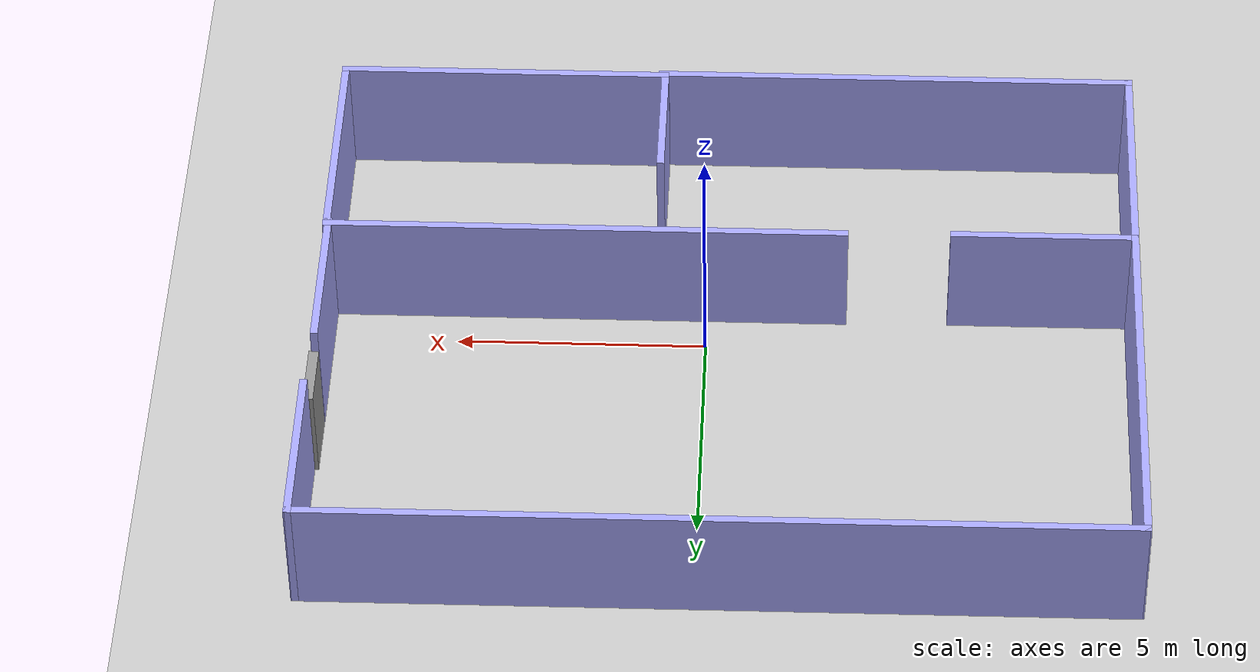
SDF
<sdf version="1.6">
 <world name="default">
  <light name="sun" type="directional">
   <pose>0 0 10 0 -0 0</pose>
   <diffuse>0.8 0.8 0.8 1</diffuse>
   <specular>0.2 0.2 0.2 1</specular>
   <attenuation>
    <range>1000</range>
    <constant>0.9</constant>
    <linear>0.01</linear>
    <quadratic>0.001</quadratic>
   </attenuation>
   <direction>-0.5 0.1 -0.9</direction>
  </light>
  <model name="ground_plane">
   <static>1</static>
   <link name="link">
    <collision name="collision">
     <geometry><plane><normal>0 0 1</normal><size>100 100</size></plane></geometry>
     <surface>
      <contact><collide_bitmask>65535</collide_bitmask></contact>
      <friction><ode><mu>100</mu><mu2>50</mu2></ode></friction>
     </surface>
    </collision>
    <visual name="visual">
     <cast_shadows>0</cast_shadows>
     <geometry><plane><normal>0 0 1</normal><size>100 100</size></plane></geometry>
     <material>
      <script><uri>file://media/materials/scripts/gazebo.material</uri><name>Gazebo/Grey</name></script>
     </material>
    </visual>
   </link>
  </model>
  <gravity>0 0 -9.8</gravity>
  <magnetic_field>6e-06 2.3e-05 -4.2e-05</magnetic_field>
  <atmosphere type="adiabatic"/>
  <physics name="default_physics" default="0" type="ode">
   <max_step_size>0.001</max_step_size>
   <real_time_factor>1</real_time_factor>
   <real_time_update_rate>1000</real_time_update_rate>
  </physics>
  <scene><ambient>0.4 0.4 0.4 1</ambient><background>0.7 0.7 0.7 1</background><shadows>1</shadows></scene>
  <spherical_coordinates>
   <surface_model>EARTH_WGS84</surface_model>
   <latitude_deg>0</latitude_deg>
   <longitude_deg>0</longitude_deg>
   <elevation>0</elevation>
   <heading_deg>0</heading_deg>
  </spherical_coordinates>
  <model name="house">
   <pose>-0.44422 0.78227 0 0 -0 0</pose>
   <link name="Door_3">
    <collision name="Door_3_Collision">
     <geometry><box><size>1.30997 0.2 2</size></box></geometry>
     <pose>0 0 1 0 -0 0</pose>
    </collision>
    <visual name="Door_3_Visual">
     <pose>0 0 1 0 -0 0</pose>
     <geometry><box><size>1.30997 0.2 2</size></box></geometry>
     <material>
      <script><uri>file://media/materials/scripts/gazebo.material</uri><name>Gazebo/Grey</name></script>
     </material>
    </visual>
    <pose>8.0389 2.18562 0 0 -0 1.56918</pose>
   </link>
   <link name="Wall_0">
    <collision name="Wall_0_Collision">
     <geometry><box><size>8 0.15 2.5</size></box></geometry>
     <pose>0 0 1.25 0 -0 0</pose>
    </collision>
    <visual name="Wall_0_Visual">
     <pose>0 0 1.25 0 -0 0</pose>
     <geometry><box><size>8 0.15 2.5</size></box></geometry>
     <material>
      <script><uri>file://media/materials/scripts/gazebo.material</uri><name>Gazebo/Grey</name></script>
      <ambient>0.666667 0.666667 1 1</ambient>
     </material>
     <meta><layer>0</layer></meta>
    </visual>
    <pose>-8.09112 2.29597 0 0 0 -1.5708</pose>
   </link>
   <link name="Wall_10">
    <collision name="Wall_10_Collision">
     <geometry><box><size>4.75 0.15 2.5</size></box></geometry>
     <pose>0 0 1.25 0 -0 0</pose>
    </collision>
    <visual name="Wall_10_Visual">
     <pose>0 0 1.25 0 -0 0</pose>
     <geometry><box><size>4.75 0.15 2.5</size></box></geometry>
     <material>
      <script><uri>file://media/materials/scripts/gazebo.material</uri><name>Gazebo/Grey</name></script>
      <ambient>0.666667 0.666667 1 1</ambient>
     </material>
     <meta><layer>0</layer></meta>
    </visual>
    <pose>8.04306 -3.88895 0 0 0 -1.57074</pose>
   </link>
   <link name="Wall_11">
    <collision name="Wall_11_Collision">
     <geometry><box><size>6.75 0.15 2.5</size></box></geometry>
     <pose>0 0 1.25 0 -0 0</pose>
    </collision>
    <visual name="Wall_11_Visual">
     <pose>0 0 1.25 0 -0 0</pose>
     <geometry><box><size>6.75 0.15 2.5</size></box></geometry>
     <material>
      <script><uri>file://media/materials/scripts/gazebo.material</uri><name>Gazebo/Grey</name></script>
      <ambient>0.666667 0.666667 1 1</ambient>
     </material>
     <meta><layer>0</layer></meta>
    </visual>
    <pose>4.7432 -6.18871 0 0 -0 3.14159</pose>
   </link>
   <link name="Wall_12">
    <collision name="Wall_12_Collision">
     <geometry><box><size>2.75 0.15 2.5</size></box></geometry>
     <pose>0 0 1.25 0 -0 0</pose>
    </collision>
    <visual name="Wall_12_Visual">
     <pose>0 0 1.25 0 -0 0</pose>
     <geometry><box><size>2.75 0.15 2.5</size></box></geometry>
     <material>
      <script><uri>file://media/materials/scripts/gazebo.material</uri><name>Gazebo/Grey</name></script>
      <ambient>0.666667 0.666667 1 1</ambient>
     </material>
     <meta><layer>0</layer></meta>
    </visual>
    <pose>1.4432 -4.88871 0 0 -0 1.5708</pose>
   </link>
   <link name="Wall_14">
    <collision name="Wall_14_Collision">
     <geometry><box><size>4.75 0.15 2.5</size></box></geometry>
     <pose>0 0 1.25 0 -0 0</pose>
    </collision>
    <visual name="Wall_14_Visual">
     <pose>0 0 1.25 0 -0 0</pose>
     <geometry><box><size>4.75 0.15 2.5</size></box></geometry>
     <material>
      <script><uri>file://media/materials/scripts/gazebo.material</uri><name>Gazebo/Grey</name></script>
      <ambient>0.666667 0.666667 1 1</ambient>
     </material>
     <meta><layer>0</layer></meta>
    </visual>
    <pose>-8.09112 -3.92903 0 0 0 -1.5708</pose>
   </link>
   <link name="Wall_15">
    <collision name="Wall_15_Collision">
     <geometry><box><size>9.75 0.15 2.5</size></box></geometry>
     <pose>0 0 1.25 0 -0 0</pose>
    </collision>
    <visual name="Wall_15_Visual">
     <pose>0 0 1.25 0 -0 0</pose>
     <geometry><box><size>9.75 0.15 2.5</size></box></geometry>
     <material>
      <script><uri>file://media/materials/scripts/gazebo.material</uri><name>Gazebo/Grey</name></script>
      <ambient>0.666667 0.666667 1 1</ambient>
     </material>
     <meta><layer>0</layer></meta>
    </visual>
    <pose>-3.29112 -6.22903 0 0 -0 0</pose>
   </link>
   <link name="Wall_2">
    <collision name="Wall_2_Collision">
     <geometry><box><size>3.25 0.15 2.5</size></box></geometry>
     <pose>0 0 1.25 0 -0 0</pose>
    </collision>
    <visual name="Wall_2_Visual">
     <pose>0 0 1.25 0 -0 0</pose>
     <geometry><box><size>3.25 0.15 2.5</size></box></geometry>
     <material>
      <script><uri>file://media/materials/scripts/gazebo.material</uri><name>Gazebo/Grey</name></script>
      <ambient>0.666667 0.666667 1 1</ambient>
     </material>
     <meta><layer>0</layer></meta>
    </visual>
    <pose>8.00888 -0.079027 0 0 -0 1.5708</pose>
   </link>
   <link name="Wall_4">
    <collision name="Wall_4_Collision">
     <geometry><box><size>3.5 0.15 2.5</size></box></geometry>
     <pose>0 0 1.25 0 -0 0</pose>
    </collision>
    <visual name="Wall_4_Visual">
     <pose>0 0 1.25 0 -0 0</pose>
     <geometry><box><size>3.5 0.15 2.5</size></box></geometry>
     <material>
      <script><uri>file://media/materials/scripts/gazebo.material</uri><name>Gazebo/Grey</name></script>
      <ambient>0.666667 0.666667 1 1</ambient>
     </material>
     <meta><layer>0</layer></meta>
    </visual>
    <pose>8.09112 4.55399 0 0 -0 1.5708</pose>
   </link>
   <link name="Wall_5">
    <collision name="Wall_5_Collision">
     <geometry><box><size>16.3322 0.15 2.5</size></box></geometry>
     <pose>0 0 1.25 0 -0 0</pose>
    </collision>
    <visual name="Wall_5_Visual">
     <pose>0 0 1.25 0 -0 0</pose>
     <geometry><box><size>16.3322 0.15 2.5</size></box></geometry>
     <material>
      <script><uri>file://media/materials/scripts/gazebo.material</uri><name>Gazebo/Grey</name></script>
      <ambient>0.666667 0.666667 1 1</ambient>
     </material>
     <meta><layer>0</layer></meta>
    </visual>
    <pose>0 6.22498 0 0 0 -3.1411</pose>
   </link>
   <link name="Wall_7">
    <collision name="Wall_7_Collision">
     <geometry><box><size>3.75 0.15 2.5</size></box></geometry>
     <pose>0 0 1.25 0 -0 0</pose>
    </collision>
    <visual name="Wall_7_Visual">
     <pose>0 0 1.25 0 -0 0</pose>
     <geometry><box><size>3.75 0.15 2.5</size></box></geometry>
     <material>
      <script><uri>file://media/materials/scripts/gazebo.material</uri><name>Gazebo/Grey</name></script>
      <ambient>0.666667 0.666667 1 1</ambient>
     </material>
     <meta><layer>0</layer></meta>
    </visual>
    <pose>-6.29111 -1.62903 0 0 -0 0</pose>
   </link>
   <link name="Wall_9">
    <collision name="Wall_9_Collision">
     <geometry><box><size>10.5003 0.15 2.5</size></box></geometry>
     <pose>0 0 1.25 0 -0 0</pose>
    </collision>
    <visual name="Wall_9_Visual">
     <pose>0 0 1.25 0 -0 0</pose>
     <geometry><box><size>10.5003 0.15 2.5</size></box></geometry>
     <material>
      <script><uri>file://media/materials/scripts/gazebo.material</uri><name>Gazebo/Grey</name></script>
      <ambient>0.666667 0.666667 1 1</ambient>
     </material>
     <meta><layer>0</layer></meta>
    </visual>
    <pose>2.86793 -1.58919 0 0 -0 0</pose>
   </link>
   <static>1</static>
  </model>
  <model name="my_ball">
   <link name="link_0">
    <inertial>
     <mass>1</mass>
     <inertia><ixx>0.1</ixx><ixy>0</ixy><ixz>0</ixz><iyy>0.1</iyy><iyz>0</iyz><izz>0.1</izz></inertia>
    </inertial>
    <visual name="visual">
     <geometry><sphere><radius>0.1</radius></sphere></geometry>
     <material>
      <lighting>1</lighting>
      <script><uri>file://media/materials/scripts/gazebo.material</uri><name>Gazebo/Grey</name></script>
      <shader type="pixel"><normal_map>__default__</normal_map></shader>
      <ambient>1 1 1 1</ambient>
      <diffuse>1 1 1 1</diffuse>
      <specular>1 1 1 1</specular>
      <emissive>1 1 1 1</emissive>
     </material>
    </visual>
    <collision name="collision">
     <geometry><sphere><radius>0.1</radius></sphere></geometry>
     <surface>
      <friction>
       <ode><mu>1</mu><mu2>1</mu2><fdir1>0 0 0</fdir1><slip1>0</slip1><slip2>0</slip2></ode>
       <torsional>
        <coefficient>1</coefficient>
        <patch_radius>0</patch_radius>
        <surface_radius>0</surface_radius>
        <use_patch_radius>1</use_patch_radius>
        <ode><slip>0</slip></ode>
       </torsional>
      </friction>
      <bounce><restitution_coefficient>0</restitution_coefficient><threshold>1e+06</threshold></bounce>
      <contact>
       <collide_without_contact>0</collide_without_contact>
       <collide_without_contact_bitmask>1</collide_without_contact_bitmask>
       <collide_bitmask>1</collide_bitmask>
       <ode>
        <soft_cfm>0</soft_cfm>
        <soft_erp>0.2</soft_erp>
        <kp>1e+13</kp>
        <kd>1</kd>
        <max_vel>0.01</max_vel>
        <min_depth>0</min_depth>
       </ode>
       <bullet>
        <split_impulse>1</split_impulse>
        <split_impulse_penetration_threshold>-0.01</split_impulse_penetration_threshold>
        <soft_cfm>0</soft_cfm>
        <soft_erp>0.2</soft_erp>
        <kp>1e+13</kp>
        <kd>1</kd>
       </bullet>
      </contact>
     </surface>
    </collision>
   </link>
   <static>0</static>
   <pose>0.466246 -7.65317 0.1 0 -0 0</pose>
  </model>
 </world>
</sdf>
